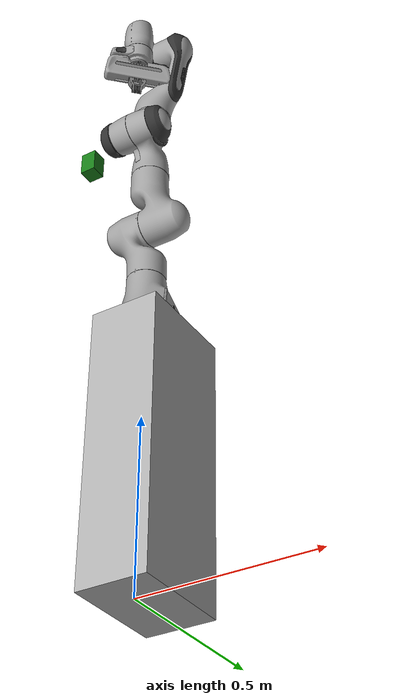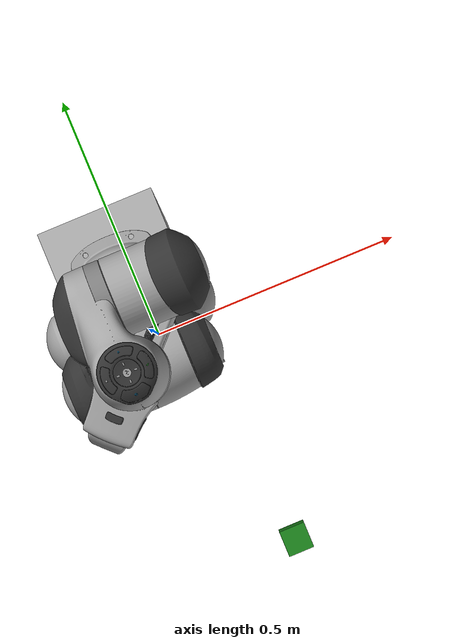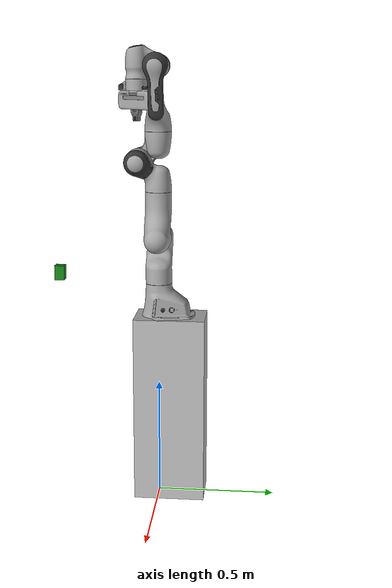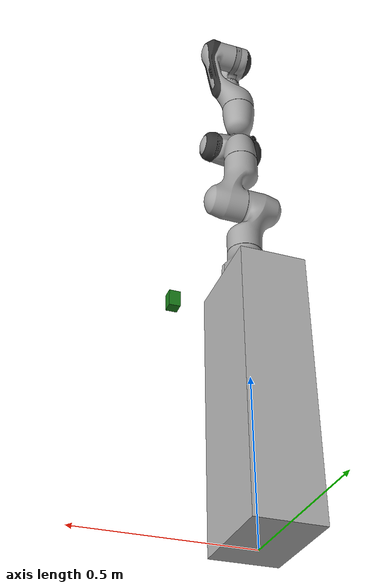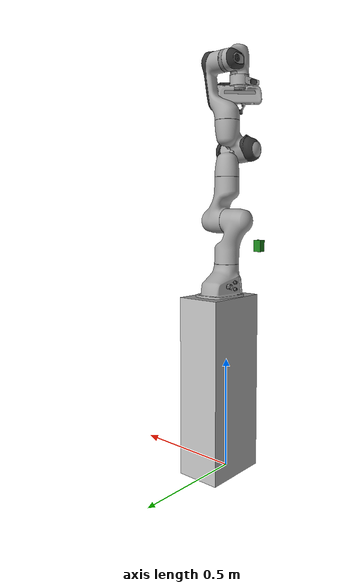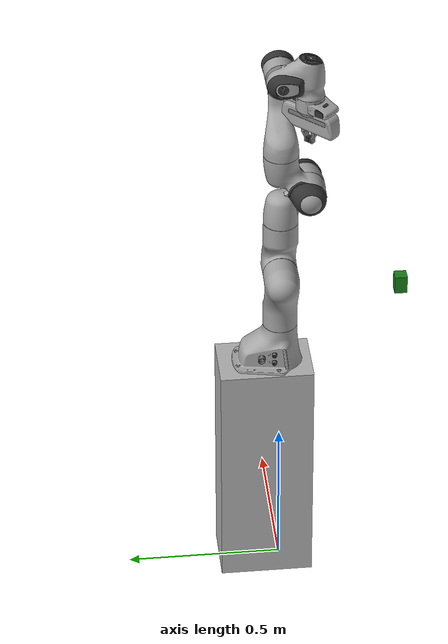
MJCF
<mujoco model="panda scene">
  <include file="panda.xml"/>

  <statistic center="0.3 0 0.4" extent="1"/>

  <visual>
    <headlight diffuse="0.15 0.15 0.15" ambient="0.3 0.3 0.3" specular="0 0 0"/>
    <rgba haze="0.15 0.25 0.35 1"/>
    <global azimuth="120" elevation="-20"/>
  </visual>

  <asset>
    <texture type="skybox" builtin="gradient" rgb1="0.3 0.5 0.7" rgb2="0 0 0" width="512" height="3072"/>
    <texture type="2d" name="groundplane" builtin="checker" mark="edge" rgb1="0.2 0.3 0.4" rgb2="0.1 0.2 0.3"
      markrgb="0.8 0.8 0.8" width="300" height="300"/>
    <material name="groundplane" texture="groundplane" texuniform="true" texrepeat="5 5" reflectance="0.2"/>
  </asset>

  <worldbody>
    <light pos="1 0 2.5" dir="-1 0 -1" directional="true" diffuse="0.15 0.15 0.15" specular="0 0 0"/>
    <geom name="floor" size="0 0 0.05" type="plane" material="groundplane" group="3"/>

    <!-- Manipulable cube -->
    <body name="box" pos="0.1 -0.4 1">
      <freejoint/>
      <geom type="box" name="box" size="0.02 0.02 0.03" condim="6" mass="0.05"
        friction="3 0.2 0.1" rgba="0.1 0.5 0.1 1" contype="1" conaffinity="1"
        solref="0.002 1.0" solimp="0.95 0.99 0.001"/>
    </body>
    <body name="table1" pos="1.35 0.02 0.41">
      <geom type="box" size="0.35 0.88 0.41" rgba="0.6 0.4 0.2 0.1" mass="0.1"
            contype="1" conaffinity="1" friction="1.0 0.05 0.01" condim="4" group="3"/>
    </body>
    <body name="table2" pos="0 -0.58 0.41">
      <geom type="box" size="1 0.28 0.41" rgba="0.6 0.4 0.2 0.1" mass="0.1"
            contype="1" conaffinity="1" friction="1.0 0.05 0.01" condim="4" group="3"/>
    </body>
    <body name="table3" pos="-1.35 0.02 0.41">
      <geom type="box" size="0.35 0.88 0.41" rgba="0.6 0.4 0.2 0.1" mass="0.1"
            contype="1" conaffinity="1" friction="1.0 0.05 0.01" condim="4" group="3"/>
    </body>
    <body name="wall1" pos="1.8 0.1 1.2">
      <geom type="box" size="0.1 1 1.2" rgba="0.5 0.5 0.5 0.1" mass="0.1"
            contype="1" conaffinity="1" friction="1.0 0.05 0.01" condim="4" group="3"/>
    </body>
    <body name="wall2" pos="0 -0.96 1.2">
      <geom type="box" size="1.7 0.1 1.2" rgba="0.5 0.5 0.5 0.1" mass="0.1"
            contype="1" conaffinity="1" friction="1.0 0.05 0.01" condim="4" group="3"/>
    </body>
    <body name="wall3" pos="-1.8 0.1 1.2">
      <geom type="box" size="0.1 1 1.2" rgba="0.5 0.5 0.5 0.1" mass="0.1"
            contype="1" conaffinity="1" friction="1.0 0.05 0.01" condim="4" group="3"/>
    </body>
    <body name="bbox" pos="0 0.05 0.4">
      <geom type="box" size="0.1 0.15 0.4" rgba="0.7 0.7 0.7 1" mass="0.1"
            contype="1" conaffinity="1" friction="1.0 0.05 0.01" condim="4"/>
    </body>
  </worldbody>

  <keyframe>
    <key name="ready"
      qpos="0 0.3 0 -1.57079 0 2.0 -0.7853 0.04 0.04 0.5 0 0.03 1 0 0 0"
      ctrl="0 0.3 0 -1.57079 0 2.0 -0.7853 0.04"/>
  </keyframe>
</mujoco>

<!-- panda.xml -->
<mujoco model="panda">
  <compiler angle="radian" meshdir="assets" autolimits="true"/>

  <option integrator="implicitfast" noslip_iterations="3"/>

  <default>
    <default class="panda">
      <material specular="0.1" shininess="0.1"/>
      <joint armature="0.1" damping="1" axis="0 0 1" range="-2.8973 2.8973"/>
      <general dyntype="none" biastype="affine" ctrlrange="-2.8973 2.8973" forcerange="-87 87"/>
      <default class="finger">
        <joint axis="0 1 0" type="slide" range="0 0.04" damping="5" armature="0.01"/>
      </default>

      <default class="visual">
        <geom type="mesh" contype="0" conaffinity="0" group="2"/>
      </default>
      <default class="collision">
        <geom type="mesh" group="3" contype="1" conaffinity="1"
              friction="2 0.1 0.05" condim="4" solref="0.002 1.0" solimp="0.95 0.99 0.001"/>
        <default class="fingertip_pad_collision_1">
          <geom type="box" size="0.0085 0.004 0.0085" pos="0 0.0055 0.0445"
                friction="3 0.2 0.1" condim="6" contype="1" conaffinity="1"
                solref="0.002 1.0" solimp="0.95 0.99 0.001"/>
        </default>
        <default class="fingertip_pad_collision_2">
          <geom type="box" size="0.003 0.002 0.003" pos="0.0055 0.002 0.05"
                friction="3 0.2 0.1" condim="6" contype="1" conaffinity="1"
                solref="0.002 1.0" solimp="0.95 0.99 0.001"/>
        </default>
        <default class="fingertip_pad_collision_3">
          <geom type="box" size="0.003 0.002 0.003" pos="-0.0055 0.002 0.05"
                friction="3 0.2 0.1" condim="6" contype="1" conaffinity="1"
                solref="0.002 1.0" solimp="0.95 0.99 0.001"/>
        </default>
        <default class="fingertip_pad_collision_4">
          <geom type="box" size="0.003 0.002 0.0035" pos="0.0055 0.002 0.0395"
                friction="3 0.2 0.1" condim="6" contype="1" conaffinity="1"
                solref="0.002 1.0" solimp="0.95 0.99 0.001"/>
        </default>
        <default class="fingertip_pad_collision_5">
          <geom type="box" size="0.003 0.002 0.0035" pos="-0.0055 0.002 0.0395"
                friction="3 0.2 0.1" condim="6" contype="1" conaffinity="1"
                solref="0.002 1.0" solimp="0.95 0.99 0.001"/>
        </default>
      </default>
    </default>
  </default>

  <asset>
    <material class="panda" name="white" rgba="0.64 0.64 0.64 1"/>
    <material class="panda" name="off_white" rgba="0.5 0.5 0.5 1"/>
    <material class="panda" name="black" rgba="0.2 0.2 0.2 1"/>
    <material class="panda" name="green" rgba="0.1 0.5 0.1 1"/>
    <material class="panda" name="light_blue" rgba="0.039216 0.541176 0.780392 1"/>

    <!-- Collision meshes -->
    <mesh name="link0_c" file="link0.stl"/>
    <mesh name="link1_c" file="link1.stl"/>
    <mesh name="link2_c" file="link2.stl"/>
    <mesh name="link3_c" file="link3.stl"/>
    <mesh name="link4_c" file="link4.stl"/>
    <mesh name="link5_c0" file="link5_collision_0.obj"/>
    <mesh name="link5_c1" file="link5_collision_1.obj"/>
    <mesh name="link5_c2" file="link5_collision_2.obj"/>
    <mesh name="link6_c" file="link6.stl"/>
    <mesh name="link7_c" file="link7.stl"/>
    <mesh name="hand_c" file="hand.stl"/>

    <!-- Visual meshes -->
    <mesh file="link0_0.obj"/>
    <mesh file="link0_1.obj"/>
    <mesh file="link0_2.obj"/>
    <mesh file="link0_3.obj"/>
    <mesh file="link0_4.obj"/>
    <mesh file="link0_5.obj"/>
    <mesh file="link0_7.obj"/>
    <mesh file="link0_8.obj"/>
    <mesh file="link0_9.obj"/>
    <mesh file="link0_10.obj"/>
    <mesh file="link0_11.obj"/>
    <mesh file="link1.obj"/>
    <mesh file="link2.obj"/>
    <mesh file="link3_0.obj"/>
    <mesh file="link3_1.obj"/>
    <mesh file="link3_2.obj"/>
    <mesh file="link3_3.obj"/>
    <mesh file="link4_0.obj"/>
    <mesh file="link4_1.obj"/>
    <mesh file="link4_2.obj"/>
    <mesh file="link4_3.obj"/>
    <mesh file="link5_0.obj"/>
    <mesh file="link5_1.obj"/>
    <mesh file="link5_2.obj"/>
    <mesh file="link6_0.obj"/>
    <mesh file="link6_1.obj"/>
    <mesh file="link6_2.obj"/>
    <mesh file="link6_3.obj"/>
    <mesh file="link6_4.obj"/>
    <mesh file="link6_5.obj"/>
    <mesh file="link6_6.obj"/>
    <mesh file="link6_7.obj"/>
    <mesh file="link6_8.obj"/>
    <mesh file="link6_9.obj"/>
    <mesh file="link6_10.obj"/>
    <mesh file="link6_11.obj"/>
    <mesh file="link6_12.obj"/>
    <mesh file="link6_13.obj"/>
    <mesh file="link6_14.obj"/>
    <mesh file="link6_15.obj"/>
    <mesh file="link6_16.obj"/>
    <mesh file="link7_0.obj"/>
    <mesh file="link7_1.obj"/>
    <mesh file="link7_2.obj"/>
    <mesh file="link7_3.obj"/>
    <mesh file="link7_4.obj"/>
    <mesh file="link7_5.obj"/>
    <mesh file="link7_6.obj"/>
    <mesh file="link7_7.obj"/>
    <mesh file="hand_0.obj"/>
    <mesh file="hand_1.obj"/>
    <mesh file="hand_2.obj"/>
    <mesh file="hand_3.obj"/>
    <mesh file="hand_4.obj"/>
    <mesh file="finger_0.obj"/>
    <mesh file="finger_1.obj"/>
  </asset>

  <worldbody>
    <body name="link0" childclass="panda" pos="0 0 0.8" euler="0 0 -1.5708">
      <inertial mass="0.629769" pos="-0.041018 -0.00014 0.049974"
        fullinertia="0.00315 0.00388 0.004285 8.2904e-7 0.00015 8.2299e-6"/>
      <geom mesh="link0_0" material="off_white" class="visual"/>
      <geom mesh="link0_1" material="black" class="visual"/>
      <geom mesh="link0_2" material="off_white" class="visual"/>
      <geom mesh="link0_3" material="black" class="visual"/>
      <geom mesh="link0_4" material="off_white" class="visual"/>
      <geom mesh="link0_5" material="black" class="visual"/>
      <geom mesh="link0_7" material="white" class="visual"/>
      <geom mesh="link0_8" material="white" class="visual"/>
      <geom mesh="link0_9" material="black" class="visual"/>
      <geom mesh="link0_10" material="off_white" class="visual"/>
      <geom mesh="link0_11" material="white" class="visual"/>
      <geom mesh="link0_c" class="collision"/>
      <body name="link1" pos="0 0 0.333">
        <inertial mass="4.970684" pos="0.003875 0.002081 -0.04762"
          fullinertia="0.70337 0.70661 0.0091170 -0.00013900 0.0067720 0.019169"/>
        <joint name="joint1"/>
        <geom material="white" mesh="link1" class="visual"/>
        <geom mesh="link1_c" class="collision"/>
        <body name="link2" quat="1 -1 0 0">
          <inertial mass="0.646926" pos="-0.003141 -0.02872 0.003495"
            fullinertia="0.0079620 2.8110e-2 2.5995e-2 -3.925e-3 1.0254e-2 7.04e-4"/>
          <joint name="joint2" range="-1.7628 1.7628"/>
          <geom material="white" mesh="link2" class="visual"/>
          <geom mesh="link2_c" class="collision"/>
          <body name="link3" pos="0 -0.316 0" quat="1 1 0 0">
            <joint name="joint3"/>
            <inertial mass="3.228604" pos="2.7518e-2 3.9252e-2 -6.6502e-2"
              fullinertia="3.7242e-2 3.6155e-2 1.083e-2 -4.761e-3 -1.1396e-2 -1.2805e-2"/>
            <geom mesh="link3_0" material="white" class="visual"/>
            <geom mesh="link3_1" material="white" class="visual"/>
            <geom mesh="link3_2" material="white" class="visual"/>
            <geom mesh="link3_3" material="black" class="visual"/>
            <geom mesh="link3_c" class="collision"/>
            <body name="link4" pos="0.0825 0 0" quat="1 1 0 0">
              <inertial mass="3.587895" pos="-5.317e-2 1.04419e-1 2.7454e-2"
                fullinertia="2.5853e-2 1.9552e-2 2.8323e-2 7.796e-3 -1.332e-3 8.641e-3"/>
              <joint name="joint4" range="-3.0718 -0.0698"/>
              <geom mesh="link4_0" material="white" class="visual"/>
              <geom mesh="link4_1" material="white" class="visual"/>
              <geom mesh="link4_2" material="black" class="visual"/>
              <geom mesh="link4_3" material="white" class="visual"/>
              <geom mesh="link4_c" class="collision"/>
              <body name="link5" pos="-0.0825 0.384 0" quat="1 -1 0 0">
                <inertial mass="1.225946" pos="-1.1953e-2 4.1065e-2 -3.8437e-2"
                  fullinertia="3.5549e-2 2.9474e-2 8.627e-3 -2.117e-3 -4.037e-3 2.29e-4"/>
                <joint name="joint5"/>
                <geom mesh="link5_0" material="black" class="visual"/>
                <geom mesh="link5_1" material="white" class="visual"/>
                <geom mesh="link5_2" material="white" class="visual"/>
                <geom mesh="link5_c0" class="collision"/>
                <geom mesh="link5_c1" class="collision"/>
                <geom mesh="link5_c2" class="collision"/>
                <body name="link6" quat="1 1 0 0">
                  <inertial mass="1.666555" pos="6.0149e-2 -1.4117e-2 -1.0517e-2"
                    fullinertia="1.964e-3 4.354e-3 5.433e-3 1.09e-4 -1.158e-3 3.41e-4"/>
                  <joint name="joint6" range="-0.0175 3.7525"/>
                  <geom mesh="link6_0" material="off_white" class="visual"/>
                  <geom mesh="link6_1" material="white" class="visual"/>
                  <geom mesh="link6_2" material="black" class="visual"/>
                  <geom mesh="link6_3" material="white" class="visual"/>
                  <geom mesh="link6_4" material="white" class="visual"/>
                  <geom mesh="link6_5" material="white" class="visual"/>
                  <geom mesh="link6_6" material="white" class="visual"/>
                  <geom mesh="link6_7" material="light_blue" class="visual"/>
                  <geom mesh="link6_8" material="light_blue" class="visual"/>
                  <geom mesh="link6_9" material="black" class="visual"/>
                  <geom mesh="link6_10" material="black" class="visual"/>
                  <geom mesh="link6_11" material="white" class="visual"/>
                  <geom mesh="link6_12" material="green" class="visual"/>
                  <geom mesh="link6_13" material="white" class="visual"/>
                  <geom mesh="link6_14" material="black" class="visual"/>
                  <geom mesh="link6_15" material="black" class="visual"/>
                  <geom mesh="link6_16" material="white" class="visual"/>
                  <geom mesh="link6_c" class="collision"/>
                  <body name="link7" pos="0.088 0 0" quat="1 1 0 0">
                    <inertial mass="7.35522e-01" pos="1.0517e-2 -4.252e-3 6.1597e-2"
                      fullinertia="1.2516e-2 1.0027e-2 4.815e-3 -4.28e-4 -1.196e-3 -7.41e-4"/>
                    <joint name="joint7"/>
                    <geom mesh="link7_0" material="white" class="visual"/>
                    <geom mesh="link7_1" material="black" class="visual"/>
                    <geom mesh="link7_2" material="black" class="visual"/>
                    <geom mesh="link7_3" material="black" class="visual"/>
                    <geom mesh="link7_4" material="black" class="visual"/>
                    <geom mesh="link7_5" material="black" class="visual"/>
                    <geom mesh="link7_6" material="black" class="visual"/>
                    <geom mesh="link7_7" material="white" class="visual"/>
                    <geom mesh="link7_c" class="collision"/>
                    <body name="hand" pos="0 0 0.107" quat="0.9238795 0 0 -0.3826834">
                      <inertial mass="0.73" pos="-0.01 0 0.03" diaginertia="0.001 0.0025 0.0017"/>
                      <geom mesh="hand_0" material="off_white" class="visual"/>
                      <geom mesh="hand_1" material="black" class="visual"/>
                      <geom mesh="hand_2" material="black" class="visual"/>
                      <geom mesh="hand_3" material="white" class="visual"/>
                      <geom mesh="hand_4" material="off_white" class="visual"/>
                      <geom mesh="hand_c" class="collision"/>
                      <body name="left_finger" pos="0 0 0.0584">
                        <inertial mass="0.015" pos="0 0 0" diaginertia="2.375e-6 2.375e-6 7.5e-7"/>
                        <joint name="finger_joint1" class="finger"/>
                        <geom mesh="finger_0" material="off_white" class="visual"/>
                        <geom mesh="finger_1" material="black" class="visual"/>
                        <geom mesh="finger_0" class="collision"/>
                        <geom class="fingertip_pad_collision_1"/>
                        <geom class="fingertip_pad_collision_2"/>
                        <geom class="fingertip_pad_collision_3"/>
                        <geom class="fingertip_pad_collision_4"/>
                        <geom class="fingertip_pad_collision_5"/>
                      </body>
                      <body name="right_finger" pos="0 0 0.0584" quat="0 0 0 1">
                        <inertial mass="0.015" pos="0 0 0" diaginertia="2.375e-6 2.375e-6 7.5e-7"/>
                        <joint name="finger_joint2" class="finger"/>
                        <geom mesh="finger_0" material="off_white" class="visual"/>
                        <geom mesh="finger_1" material="black" class="visual"/>
                        <geom mesh="finger_0" class="collision"/>
                        <geom class="fingertip_pad_collision_1"/>
                        <geom class="fingertip_pad_collision_2"/>
                        <geom class="fingertip_pad_collision_3"/>
                        <geom class="fingertip_pad_collision_4"/>
                        <geom class="fingertip_pad_collision_5"/>
                      </body>
                    </body>
                  </body>
                </body>
              </body>
            </body>
          </body>
        </body>
      </body>
    </body>
  </worldbody>

  <tendon>
    <fixed name="split">
      <joint joint="finger_joint1" coef="0.5"/>
      <joint joint="finger_joint2" coef="0.5"/>
    </fixed>
  </tendon>

  <equality>
    <joint joint1="finger_joint1" joint2="finger_joint2" solimp="0.95 0.99 0.001" solref="0.005 1"/>
  </equality>

  <actuator>
    <general class="panda" name="actuator1" joint="joint1" gainprm="4500" biasprm="0 -4500 -450"/>
    <general class="panda" name="actuator2" joint="joint2" gainprm="4500" biasprm="0 -4500 -450"
      ctrlrange="-1.7628 1.7628"/>
    <general class="panda" name="actuator3" joint="joint3" gainprm="3500" biasprm="0 -3500 -350"/>
    <general class="panda" name="actuator4" joint="joint4" gainprm="3500" biasprm="0 -3500 -350"
      ctrlrange="-3.0718 -0.0698"/>
    <general class="panda" name="actuator5" joint="joint5" gainprm="2000" biasprm="0 -2000 -200" forcerange="-12 12"/>
    <general class="panda" name="actuator6" joint="joint6" gainprm="2000" biasprm="0 -2000 -200" forcerange="-12 12"
      ctrlrange="-0.0175 3.7525"/>
    <general class="panda" name="actuator7" joint="joint7" gainprm="2000" biasprm="0 -2000 -200" forcerange="-12 12"/>
    <!-- Gripper actuator: position control with high stiffness -->
    <position name="actuator8" tendon="split" kp="1000" kv="10" ctrlrange="0 0.04" forcerange="-100 100"/>
  </actuator>

  <keyframe>
    <key name="home" qpos="0 0 0 -1.57079 0 1.57079 -0.7853 0.04 0.04" ctrl="0 0 0 -1.57079 0 1.57079 -0.7853 0.04"/>
  </keyframe>

  <contact>
    <exclude body1="link0" body2="link1"/>
    <exclude body1="hand" body2="left_finger"/>
    <exclude body1="hand" body2="right_finger"/>
    <exclude body1="left_finger" body2="right_finger"/>
  </contact>
</mujoco>
